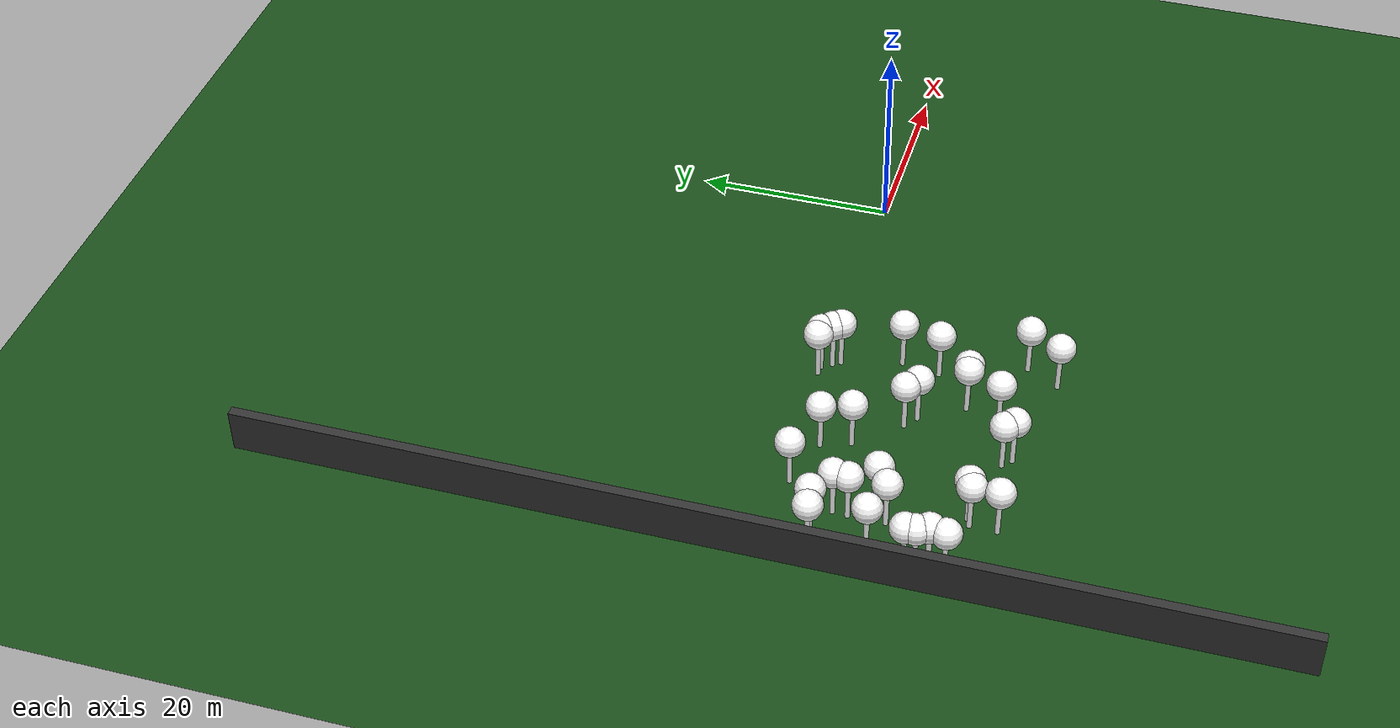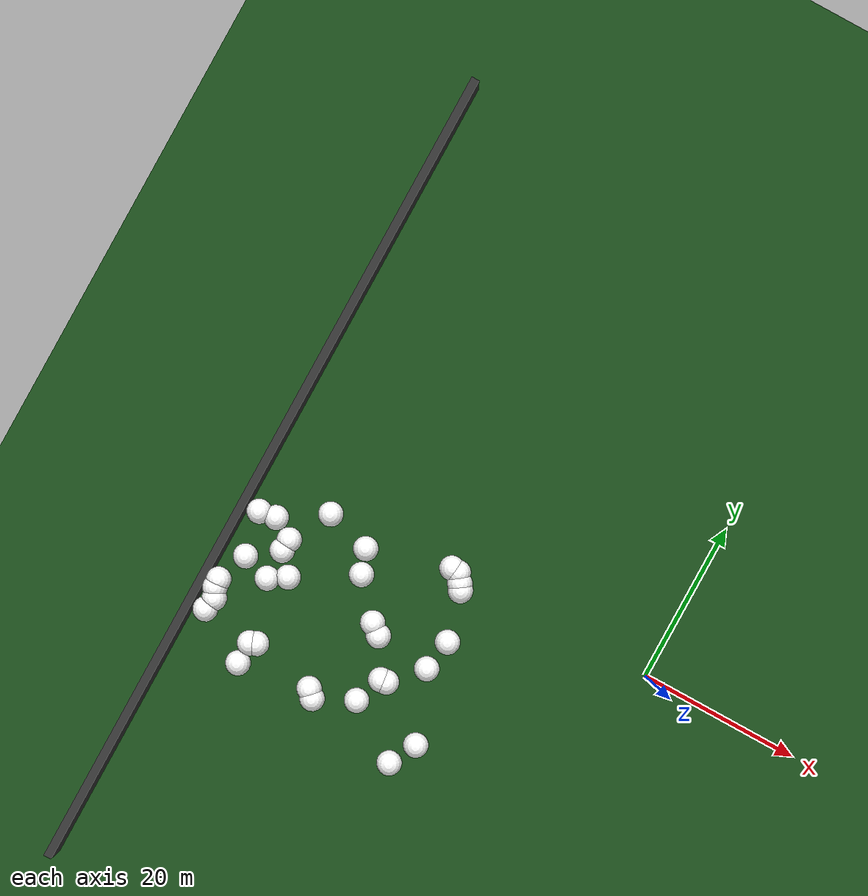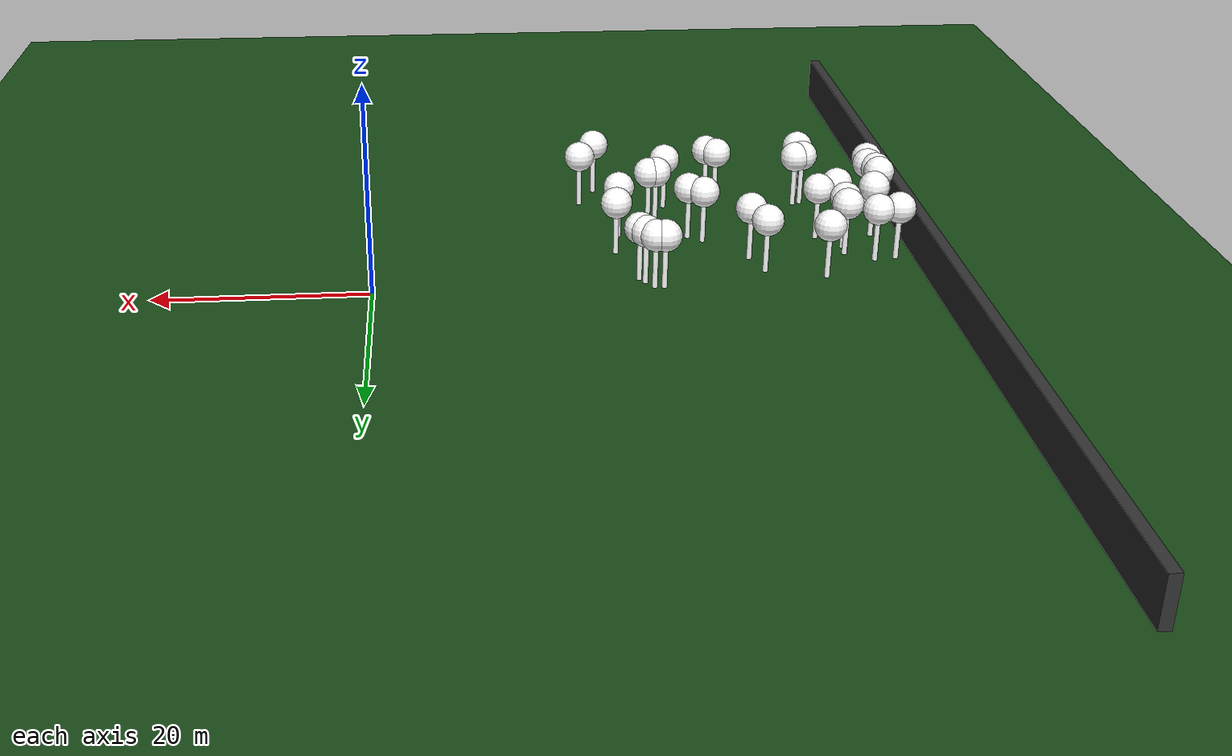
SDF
<sdf version="1.8">
 <world name="forest_world">
  <model name="tree_simple448">
   <static>1</static>
   <link name="link">
    <pose>0 0 0.1 0 -0 0</pose>
    <collision name="collision_trunk">
     <pose>0 0 2 0 -0 0</pose>
     <geometry><cylinder><radius>0.25</radius><length>4</length></cylinder></geometry>
    </collision>
    <collision name="collision_treetop">
     <pose>0 0 5.2 0 -0 0</pose>
     <geometry><sphere><radius>1.5</radius></sphere></geometry>
    </collision>
    <visual name="trunk">
     <pose>0 0 2 0 -0 0</pose>
     <geometry><cylinder><radius>0.25</radius><length>4</length></cylinder></geometry>
     <material>
      <ambient>0.5 0.5 0.5 1</ambient>
      <diffuse>1.0 1.0 1.0 1</diffuse>
      <specular>0.0 0.0 0.0 1</specular>
      <pbr>
       <metal>
        <albedo_map>../worlds/textures/tree_simple_trunk.jpg</albedo_map>
        <metalness>0.0</metalness>
        <roughness>0.8</roughness>
       </metal>
      </pbr>
     </material>
    </visual>
    <visual name="treetop">
     <pose>0 0 5.2 0 -0 0</pose>
     <geometry><sphere><radius>1.5</radius></sphere></geometry>
     <material>
      <ambient>0.5 0.5 0.5 1</ambient>
      <diffuse>1.0 1.0 1.0 1</diffuse>
      <specular>0.0 0.0 0.0 1</specular>
      <pbr>
       <metal>
        <albedo_map>../worlds/textures/tree_simple_treetop.jpg</albedo_map>
        <metalness>0.0</metalness>
        <roughness>0.9</roughness>
       </metal>
      </pbr>
     </material>
    </visual>
   </link>
   <pose>-24.5519753109 -1.42546954192 0 0 -0 0</pose>
  </model>
  <model name="tree_simple434">
   <static>1</static>
   <link name="link">
    <pose>0 0 0.1 0 -0 0</pose>
    <collision name="collision_trunk">
     <pose>0 0 2 0 -0 0</pose>
     <geometry><cylinder><radius>0.25</radius><length>4</length></cylinder></geometry>
    </collision>
    <collision name="collision_treetop">
     <pose>0 0 5.2 0 -0 0</pose>
     <geometry><sphere><radius>1.5</radius></sphere></geometry>
    </collision>
    <visual name="trunk">
     <pose>0 0 2 0 -0 0</pose>
     <geometry><cylinder><radius>0.25</radius><length>4</length></cylinder></geometry>
     <material>
      <ambient>0.5 0.5 0.5 1</ambient>
      <diffuse>1.0 1.0 1.0 1</diffuse>
      <specular>0.0 0.0 0.0 1</specular>
      <pbr>
       <metal>
        <albedo_map>../worlds/textures/tree_simple_trunk.jpg</albedo_map>
        <metalness>0.0</metalness>
        <roughness>0.8</roughness>
       </metal>
      </pbr>
     </material>
    </visual>
    <visual name="treetop">
     <pose>0 0 5.2 0 -0 0</pose>
     <geometry><sphere><radius>1.5</radius></sphere></geometry>
     <material>
      <ambient>0.5 0.5 0.5 1</ambient>
      <diffuse>1.0 1.0 1.0 1</diffuse>
      <specular>0.0 0.0 0.0 1</specular>
      <pbr>
       <metal>
        <albedo_map>../worlds/textures/tree_simple_treetop.jpg</albedo_map>
        <metalness>0.0</metalness>
        <roughness>0.9</roughness>
       </metal>
      </pbr>
     </material>
    </visual>
   </link>
   <pose>-43.1297442783 -18.5304452852 0 0 -0 0</pose>
  </model>
  <model name="tree_simple418">
   <static>1</static>
   <link name="link">
    <pose>0 0 0.1 0 -0 0</pose>
    <collision name="collision_trunk">
     <pose>0 0 2 0 -0 0</pose>
     <geometry><cylinder><radius>0.25</radius><length>4</length></cylinder></geometry>
    </collision>
    <collision name="collision_treetop">
     <pose>0 0 5.2 0 -0 0</pose>
     <geometry><sphere><radius>1.5</radius></sphere></geometry>
    </collision>
    <visual name="trunk">
     <pose>0 0 2 0 -0 0</pose>
     <geometry><cylinder><radius>0.25</radius><length>4</length></cylinder></geometry>
     <material>
      <ambient>0.5 0.5 0.5 1</ambient>
      <diffuse>1.0 1.0 1.0 1</diffuse>
      <specular>0.0 0.0 0.0 1</specular>
      <pbr>
       <metal>
        <albedo_map>../worlds/textures/tree_simple_trunk.jpg</albedo_map>
        <metalness>0.0</metalness>
        <roughness>0.8</roughness>
       </metal>
      </pbr>
     </material>
    </visual>
    <visual name="treetop">
     <pose>0 0 5.2 0 -0 0</pose>
     <geometry><sphere><radius>1.5</radius></sphere></geometry>
     <material>
      <ambient>0.5 0.5 0.5 1</ambient>
      <diffuse>1.0 1.0 1.0 1</diffuse>
      <specular>0.0 0.0 0.0 1</specular>
      <pbr>
       <metal>
        <albedo_map>../worlds/textures/tree_simple_treetop.jpg</albedo_map>
        <metalness>0.0</metalness>
        <roughness>0.9</roughness>
       </metal>
      </pbr>
     </material>
    </visual>
   </link>
   <pose>-22.9841604277 -7.39292719752 0 0 -0 0</pose>
  </model>
  <model name="tree_simple403">
   <static>1</static>
   <link name="link">
    <pose>0 0 0.1 0 -0 0</pose>
    <collision name="collision_trunk">
     <pose>0 0 2 0 -0 0</pose>
     <geometry><cylinder><radius>0.25</radius><length>4</length></cylinder></geometry>
    </collision>
    <collision name="collision_treetop">
     <pose>0 0 5.2 0 -0 0</pose>
     <geometry><sphere><radius>1.5</radius></sphere></geometry>
    </collision>
    <visual name="trunk">
     <pose>0 0 2 0 -0 0</pose>
     <geometry><cylinder><radius>0.25</radius><length>4</length></cylinder></geometry>
     <material>
      <ambient>0.5 0.5 0.5 1</ambient>
      <diffuse>1.0 1.0 1.0 1</diffuse>
      <specular>0.0 0.0 0.0 1</specular>
      <pbr>
       <metal>
        <albedo_map>../worlds/textures/tree_simple_trunk.jpg</albedo_map>
        <metalness>0.0</metalness>
        <roughness>0.8</roughness>
       </metal>
      </pbr>
     </material>
    </visual>
    <visual name="treetop">
     <pose>0 0 5.2 0 -0 0</pose>
     <geometry><sphere><radius>1.5</radius></sphere></geometry>
     <material>
      <ambient>0.5 0.5 0.5 1</ambient>
      <diffuse>1.0 1.0 1.0 1</diffuse>
      <specular>0.0 0.0 0.0 1</specular>
      <pbr>
       <metal>
        <albedo_map>../worlds/textures/tree_simple_treetop.jpg</albedo_map>
        <metalness>0.0</metalness>
        <roughness>0.9</roughness>
       </metal>
      </pbr>
     </material>
    </visual>
   </link>
   <pose>-49.5316989744 -17.555694289 0 0 -0 0</pose>
  </model>
  <model name="tree_simple396">
   <static>1</static>
   <link name="link">
    <pose>0 0 0.1 0 -0 0</pose>
    <collision name="collision_trunk">
     <pose>0 0 2 0 -0 0</pose>
     <geometry><cylinder><radius>0.25</radius><length>4</length></cylinder></geometry>
    </collision>
    <collision name="collision_treetop">
     <pose>0 0 5.2 0 -0 0</pose>
     <geometry><sphere><radius>1.5</radius></sphere></geometry>
    </collision>
    <visual name="trunk">
     <pose>0 0 2 0 -0 0</pose>
     <geometry><cylinder><radius>0.25</radius><length>4</length></cylinder></geometry>
     <material>
      <ambient>0.5 0.5 0.5 1</ambient>
      <diffuse>1.0 1.0 1.0 1</diffuse>
      <specular>0.0 0.0 0.0 1</specular>
      <pbr>
       <metal>
        <albedo_map>../worlds/textures/tree_simple_trunk.jpg</albedo_map>
        <metalness>0.0</metalness>
        <roughness>0.8</roughness>
       </metal>
      </pbr>
     </material>
    </visual>
    <visual name="treetop">
     <pose>0 0 5.2 0 -0 0</pose>
     <geometry><sphere><radius>1.5</radius></sphere></geometry>
     <material>
      <ambient>0.5 0.5 0.5 1</ambient>
      <diffuse>1.0 1.0 1.0 1</diffuse>
      <specular>0.0 0.0 0.0 1</specular>
      <pbr>
       <metal>
        <albedo_map>../worlds/textures/tree_simple_treetop.jpg</albedo_map>
        <metalness>0.0</metalness>
        <roughness>0.9</roughness>
       </metal>
      </pbr>
     </material>
    </visual>
   </link>
   <pose>-34.4954871255 -19.8377607827 0 0 -0 0</pose>
  </model>
  <model name="tree_simple375">
   <static>1</static>
   <link name="link">
    <pose>0 0 0.1 0 -0 0</pose>
    <collision name="collision_trunk">
     <pose>0 0 2 0 -0 0</pose>
     <geometry><cylinder><radius>0.25</radius><length>4</length></cylinder></geometry>
    </collision>
    <collision name="collision_treetop">
     <pose>0 0 5.2 0 -0 0</pose>
     <geometry><sphere><radius>1.5</radius></sphere></geometry>
    </collision>
    <visual name="trunk">
     <pose>0 0 2 0 -0 0</pose>
     <geometry><cylinder><radius>0.25</radius><length>4</length></cylinder></geometry>
     <material>
      <ambient>0.5 0.5 0.5 1</ambient>
      <diffuse>1.0 1.0 1.0 1</diffuse>
      <specular>0.0 0.0 0.0 1</specular>
      <pbr>
       <metal>
        <albedo_map>../worlds/textures/tree_simple_trunk.jpg</albedo_map>
        <metalness>0.0</metalness>
        <roughness>0.8</roughness>
       </metal>
      </pbr>
     </material>
    </visual>
    <visual name="treetop">
     <pose>0 0 5.2 0 -0 0</pose>
     <geometry><sphere><radius>1.5</radius></sphere></geometry>
     <material>
      <ambient>0.5 0.5 0.5 1</ambient>
      <diffuse>1.0 1.0 1.0 1</diffuse>
      <specular>0.0 0.0 0.0 1</specular>
      <pbr>
       <metal>
        <albedo_map>../worlds/textures/tree_simple_treetop.jpg</albedo_map>
        <metalness>0.0</metalness>
        <roughness>0.9</roughness>
       </metal>
      </pbr>
     </material>
    </visual>
   </link>
   <pose>-48.3845088934 -9.9079742 0 0 -0 0</pose>
  </model>
  <model name="tree_simple373">
   <static>1</static>
   <link name="link">
    <pose>0 0 0.1 0 -0 0</pose>
    <collision name="collision_trunk">
     <pose>0 0 2 0 -0 0</pose>
     <geometry><cylinder><radius>0.25</radius><length>4</length></cylinder></geometry>
    </collision>
    <collision name="collision_treetop">
     <pose>0 0 5.2 0 -0 0</pose>
     <geometry><sphere><radius>1.5</radius></sphere></geometry>
    </collision>
    <visual name="trunk">
     <pose>0 0 2 0 -0 0</pose>
     <geometry><cylinder><radius>0.25</radius><length>4</length></cylinder></geometry>
     <material>
      <ambient>0.5 0.5 0.5 1</ambient>
      <diffuse>1.0 1.0 1.0 1</diffuse>
      <specular>0.0 0.0 0.0 1</specular>
      <pbr>
       <metal>
        <albedo_map>../worlds/textures/tree_simple_trunk.jpg</albedo_map>
        <metalness>0.0</metalness>
        <roughness>0.8</roughness>
       </metal>
      </pbr>
     </material>
    </visual>
    <visual name="treetop">
     <pose>0 0 5.2 0 -0 0</pose>
     <geometry><sphere><radius>1.5</radius></sphere></geometry>
     <material>
      <ambient>0.5 0.5 0.5 1</ambient>
      <diffuse>1.0 1.0 1.0 1</diffuse>
      <specular>0.0 0.0 0.0 1</specular>
      <pbr>
       <metal>
        <albedo_map>../worlds/textures/tree_simple_treetop.jpg</albedo_map>
        <metalness>0.0</metalness>
        <roughness>0.9</roughness>
       </metal>
      </pbr>
     </material>
    </visual>
   </link>
   <pose>-43.1842610619 -21.2191114712 0 0 -0 0</pose>
  </model>
  <model name="tree_simple349">
   <static>1</static>
   <link name="link">
    <pose>0 0 0.1 0 -0 0</pose>
    <collision name="collision_trunk">
     <pose>0 0 2 0 -0 0</pose>
     <geometry><cylinder><radius>0.25</radius><length>4</length></cylinder></geometry>
    </collision>
    <collision name="collision_treetop">
     <pose>0 0 5.2 0 -0 0</pose>
     <geometry><sphere><radius>1.5</radius></sphere></geometry>
    </collision>
    <visual name="trunk">
     <pose>0 0 2 0 -0 0</pose>
     <geometry><cylinder><radius>0.25</radius><length>4</length></cylinder></geometry>
     <material>
      <ambient>0.5 0.5 0.5 1</ambient>
      <diffuse>1.0 1.0 1.0 1</diffuse>
      <specular>0.0 0.0 0.0 1</specular>
      <pbr>
       <metal>
        <albedo_map>../worlds/textures/tree_simple_trunk.jpg</albedo_map>
        <metalness>0.0</metalness>
        <roughness>0.8</roughness>
       </metal>
      </pbr>
     </material>
    </visual>
    <visual name="treetop">
     <pose>0 0 5.2 0 -0 0</pose>
     <geometry><sphere><radius>1.5</radius></sphere></geometry>
     <material>
      <ambient>0.5 0.5 0.5 1</ambient>
      <diffuse>1.0 1.0 1.0 1</diffuse>
      <specular>0.0 0.0 0.0 1</specular>
      <pbr>
       <metal>
        <albedo_map>../worlds/textures/tree_simple_treetop.jpg</albedo_map>
        <metalness>0.0</metalness>
        <roughness>0.9</roughness>
       </metal>
      </pbr>
     </material>
    </visual>
   </link>
   <pose>-20.4686708935 -19.6389151122 0 0 -0 0</pose>
  </model>
  <model name="tree_simple341">
   <static>1</static>
   <link name="link">
    <pose>0 0 0.1 0 -0 0</pose>
    <collision name="collision_trunk">
     <pose>0 0 2 0 -0 0</pose>
     <geometry><cylinder><radius>0.25</radius><length>4</length></cylinder></geometry>
    </collision>
    <collision name="collision_treetop">
     <pose>0 0 5.2 0 -0 0</pose>
     <geometry><sphere><radius>1.5</radius></sphere></geometry>
    </collision>
    <visual name="trunk">
     <pose>0 0 2 0 -0 0</pose>
     <geometry><cylinder><radius>0.25</radius><length>4</length></cylinder></geometry>
     <material>
      <ambient>0.5 0.5 0.5 1</ambient>
      <diffuse>1.0 1.0 1.0 1</diffuse>
      <specular>0.0 0.0 0.0 1</specular>
      <pbr>
       <metal>
        <albedo_map>../worlds/textures/tree_simple_trunk.jpg</albedo_map>
        <metalness>0.0</metalness>
        <roughness>0.8</roughness>
       </metal>
      </pbr>
     </material>
    </visual>
    <visual name="treetop">
     <pose>0 0 5.2 0 -0 0</pose>
     <geometry><sphere><radius>1.5</radius></sphere></geometry>
     <material>
      <ambient>0.5 0.5 0.5 1</ambient>
      <diffuse>1.0 1.0 1.0 1</diffuse>
      <specular>0.0 0.0 0.0 1</specular>
      <pbr>
       <metal>
        <albedo_map>../worlds/textures/tree_simple_treetop.jpg</albedo_map>
        <metalness>0.0</metalness>
        <roughness>0.9</roughness>
       </metal>
      </pbr>
     </material>
    </visual>
   </link>
   <pose>-49.5073976614 -4.58498276765 0 0 -0 0</pose>
  </model>
  <model name="tree_simple326">
   <static>1</static>
   <link name="link">
    <pose>0 0 0.1 0 -0 0</pose>
    <collision name="collision_trunk">
     <pose>0 0 2 0 -0 0</pose>
     <geometry><cylinder><radius>0.25</radius><length>4</length></cylinder></geometry>
    </collision>
    <collision name="collision_treetop">
     <pose>0 0 5.2 0 -0 0</pose>
     <geometry><sphere><radius>1.5</radius></sphere></geometry>
    </collision>
    <visual name="trunk">
     <pose>0 0 2 0 -0 0</pose>
     <geometry><cylinder><radius>0.25</radius><length>4</length></cylinder></geometry>
     <material>
      <ambient>0.5 0.5 0.5 1</ambient>
      <diffuse>1.0 1.0 1.0 1</diffuse>
      <specular>0.0 0.0 0.0 1</specular>
      <pbr>
       <metal>
        <albedo_map>../worlds/textures/tree_simple_trunk.jpg</albedo_map>
        <metalness>0.0</metalness>
        <roughness>0.8</roughness>
       </metal>
      </pbr>
     </material>
    </visual>
    <visual name="treetop">
     <pose>0 0 5.2 0 -0 0</pose>
     <geometry><sphere><radius>1.5</radius></sphere></geometry>
     <material>
      <ambient>0.5 0.5 0.5 1</ambient>
      <diffuse>1.0 1.0 1.0 1</diffuse>
      <specular>0.0 0.0 0.0 1</specular>
      <pbr>
       <metal>
        <albedo_map>../worlds/textures/tree_simple_treetop.jpg</albedo_map>
        <metalness>0.0</metalness>
        <roughness>0.9</roughness>
       </metal>
      </pbr>
     </material>
    </visual>
   </link>
   <pose>-44.8519520945 -5.80439962373 0 0 -0 0</pose>
  </model>
  <model name="tree_simple323">
   <static>1</static>
   <link name="link">
    <pose>0 0 0.1 0 -0 0</pose>
    <collision name="collision_trunk">
     <pose>0 0 2 0 -0 0</pose>
     <geometry><cylinder><radius>0.25</radius><length>4</length></cylinder></geometry>
    </collision>
    <collision name="collision_treetop">
     <pose>0 0 5.2 0 -0 0</pose>
     <geometry><sphere><radius>1.5</radius></sphere></geometry>
    </collision>
    <visual name="trunk">
     <pose>0 0 2 0 -0 0</pose>
     <geometry><cylinder><radius>0.25</radius><length>4</length></cylinder></geometry>
     <material>
      <ambient>0.5 0.5 0.5 1</ambient>
      <diffuse>1.0 1.0 1.0 1</diffuse>
      <specular>0.0 0.0 0.0 1</specular>
      <pbr>
       <metal>
        <albedo_map>../worlds/textures/tree_simple_trunk.jpg</albedo_map>
        <metalness>0.0</metalness>
        <roughness>0.8</roughness>
       </metal>
      </pbr>
     </material>
    </visual>
    <visual name="treetop">
     <pose>0 0 5.2 0 -0 0</pose>
     <geometry><sphere><radius>1.5</radius></sphere></geometry>
     <material>
      <ambient>0.5 0.5 0.5 1</ambient>
      <diffuse>1.0 1.0 1.0 1</diffuse>
      <specular>0.0 0.0 0.0 1</specular>
      <pbr>
       <metal>
        <albedo_map>../worlds/textures/tree_simple_treetop.jpg</albedo_map>
        <metalness>0.0</metalness>
        <roughness>0.9</roughness>
       </metal>
      </pbr>
     </material>
    </visual>
   </link>
   <pose>-44.9542016132 -10.9647646888 0 0 -0 0</pose>
  </model>
  <model name="tree_simple318">
   <static>1</static>
   <link name="link">
    <pose>0 0 0.1 0 -0 0</pose>
    <collision name="collision_trunk">
     <pose>0 0 2 0 -0 0</pose>
     <geometry><cylinder><radius>0.25</radius><length>4</length></cylinder></geometry>
    </collision>
    <collision name="collision_treetop">
     <pose>0 0 5.2 0 -0 0</pose>
     <geometry><sphere><radius>1.5</radius></sphere></geometry>
    </collision>
    <visual name="trunk">
     <pose>0 0 2 0 -0 0</pose>
     <geometry><cylinder><radius>0.25</radius><length>4</length></cylinder></geometry>
     <material>
      <ambient>0.5 0.5 0.5 1</ambient>
      <diffuse>1.0 1.0 1.0 1</diffuse>
      <specular>0.0 0.0 0.0 1</specular>
      <pbr>
       <metal>
        <albedo_map>../worlds/textures/tree_simple_trunk.jpg</albedo_map>
        <metalness>0.0</metalness>
        <roughness>0.8</roughness>
       </metal>
      </pbr>
     </material>
    </visual>
    <visual name="treetop">
     <pose>0 0 5.2 0 -0 0</pose>
     <geometry><sphere><radius>1.5</radius></sphere></geometry>
     <material>
      <ambient>0.5 0.5 0.5 1</ambient>
      <diffuse>1.0 1.0 1.0 1</diffuse>
      <specular>0.0 0.0 0.0 1</specular>
      <pbr>
       <metal>
        <albedo_map>../worlds/textures/tree_simple_treetop.jpg</albedo_map>
        <metalness>0.0</metalness>
        <roughness>0.9</roughness>
       </metal>
      </pbr>
     </material>
    </visual>
   </link>
   <pose>-35.5307244579 -5.31130875944 0 0 -0 0</pose>
  </model>
  <model name="tree_simple279">
   <static>1</static>
   <link name="link">
    <pose>0 0 0.1 0 -0 0</pose>
    <collision name="collision_trunk">
     <pose>0 0 2 0 -0 0</pose>
     <geometry><cylinder><radius>0.25</radius><length>4</length></cylinder></geometry>
    </collision>
    <collision name="collision_treetop">
     <pose>0 0 5.2 0 -0 0</pose>
     <geometry><sphere><radius>1.5</radius></sphere></geometry>
    </collision>
    <visual name="trunk">
     <pose>0 0 2 0 -0 0</pose>
     <geometry><cylinder><radius>0.25</radius><length>4</length></cylinder></geometry>
     <material>
      <ambient>0.5 0.5 0.5 1</ambient>
      <diffuse>1.0 1.0 1.0 1</diffuse>
      <specular>0.0 0.0 0.0 1</specular>
      <pbr>
       <metal>
        <albedo_map>../worlds/textures/tree_simple_trunk.jpg</albedo_map>
        <metalness>0.0</metalness>
        <roughness>0.8</roughness>
       </metal>
      </pbr>
     </material>
    </visual>
    <visual name="treetop">
     <pose>0 0 5.2 0 -0 0</pose>
     <geometry><sphere><radius>1.5</radius></sphere></geometry>
     <material>
      <ambient>0.5 0.5 0.5 1</ambient>
      <diffuse>1.0 1.0 1.0 1</diffuse>
      <specular>0.0 0.0 0.0 1</specular>
      <pbr>
       <metal>
        <albedo_map>../worlds/textures/tree_simple_treetop.jpg</albedo_map>
        <metalness>0.0</metalness>
        <roughness>0.9</roughness>
       </metal>
      </pbr>
     </material>
    </visual>
   </link>
   <pose>-25.0449823603 -0.682470499347 0 0 -0 0</pose>
  </model>
  <model name="tree_simple272">
   <static>1</static>
   <link name="link">
    <pose>0 0 0.1 0 -0 0</pose>
    <collision name="collision_trunk">
     <pose>0 0 2 0 -0 0</pose>
     <geometry><cylinder><radius>0.25</radius><length>4</length></cylinder></geometry>
    </collision>
    <collision name="collision_treetop">
     <pose>0 0 5.2 0 -0 0</pose>
     <geometry><sphere><radius>1.5</radius></sphere></geometry>
    </collision>
    <visual name="trunk">
     <pose>0 0 2 0 -0 0</pose>
     <geometry><cylinder><radius>0.25</radius><length>4</length></cylinder></geometry>
     <material>
      <ambient>0.5 0.5 0.5 1</ambient>
      <diffuse>1.0 1.0 1.0 1</diffuse>
      <specular>0.0 0.0 0.0 1</specular>
      <pbr>
       <metal>
        <albedo_map>../worlds/textures/tree_simple_trunk.jpg</albedo_map>
        <metalness>0.0</metalness>
        <roughness>0.8</roughness>
       </metal>
      </pbr>
     </material>
    </visual>
    <visual name="treetop">
     <pose>0 0 5.2 0 -0 0</pose>
     <geometry><sphere><radius>1.5</radius></sphere></geometry>
     <material>
      <ambient>0.5 0.5 0.5 1</ambient>
      <diffuse>1.0 1.0 1.0 1</diffuse>
      <specular>0.0 0.0 0.0 1</specular>
      <pbr>
       <metal>
        <albedo_map>../worlds/textures/tree_simple_treetop.jpg</albedo_map>
        <metalness>0.0</metalness>
        <roughness>0.9</roughness>
       </metal>
      </pbr>
     </material>
    </visual>
   </link>
   <pose>-28.9961141051 -18.3973115949 0 0 -0 0</pose>
  </model>
  <model name="tree_simple259">
   <static>1</static>
   <link name="link">
    <pose>0 0 0.1 0 -0 0</pose>
    <collision name="collision_trunk">
     <pose>0 0 2 0 -0 0</pose>
     <geometry><cylinder><radius>0.25</radius><length>4</length></cylinder></geometry>
    </collision>
    <collision name="collision_treetop">
     <pose>0 0 5.2 0 -0 0</pose>
     <geometry><sphere><radius>1.5</radius></sphere></geometry>
    </collision>
    <visual name="trunk">
     <pose>0 0 2 0 -0 0</pose>
     <geometry><cylinder><radius>0.25</radius><length>4</length></cylinder></geometry>
     <material>
      <ambient>0.5 0.5 0.5 1</ambient>
      <diffuse>1.0 1.0 1.0 1</diffuse>
      <specular>0.0 0.0 0.0 1</specular>
      <pbr>
       <metal>
        <albedo_map>../worlds/textures/tree_simple_trunk.jpg</albedo_map>
        <metalness>0.0</metalness>
        <roughness>0.8</roughness>
       </metal>
      </pbr>
     </material>
    </visual>
    <visual name="treetop">
     <pose>0 0 5.2 0 -0 0</pose>
     <geometry><sphere><radius>1.5</radius></sphere></geometry>
     <material>
      <ambient>0.5 0.5 0.5 1</ambient>
      <diffuse>1.0 1.0 1.0 1</diffuse>
      <specular>0.0 0.0 0.0 1</specular>
      <pbr>
       <metal>
        <albedo_map>../worlds/textures/tree_simple_treetop.jpg</albedo_map>
        <metalness>0.0</metalness>
        <roughness>0.9</roughness>
       </metal>
      </pbr>
     </material>
    </visual>
   </link>
   <pose>-49.2281564384 -15.9494105315 0 0 -0 0</pose>
  </model>
  <model name="tree_simple245">
   <static>1</static>
   <link name="link">
    <pose>0 0 0.1 0 -0 0</pose>
    <collision name="collision_trunk">
     <pose>0 0 2 0 -0 0</pose>
     <geometry><cylinder><radius>0.25</radius><length>4</length></cylinder></geometry>
    </collision>
    <collision name="collision_treetop">
     <pose>0 0 5.2 0 -0 0</pose>
     <geometry><sphere><radius>1.5</radius></sphere></geometry>
    </collision>
    <visual name="trunk">
     <pose>0 0 2 0 -0 0</pose>
     <geometry><cylinder><radius>0.25</radius><length>4</length></cylinder></geometry>
     <material>
      <ambient>0.5 0.5 0.5 1</ambient>
      <diffuse>1.0 1.0 1.0 1</diffuse>
      <specular>0.0 0.0 0.0 1</specular>
      <pbr>
       <metal>
        <albedo_map>../worlds/textures/tree_simple_trunk.jpg</albedo_map>
        <metalness>0.0</metalness>
        <roughness>0.8</roughness>
       </metal>
      </pbr>
     </material>
    </visual>
    <visual name="treetop">
     <pose>0 0 5.2 0 -0 0</pose>
     <geometry><sphere><radius>1.5</radius></sphere></geometry>
     <material>
      <ambient>0.5 0.5 0.5 1</ambient>
      <diffuse>1.0 1.0 1.0 1</diffuse>
      <specular>0.0 0.0 0.0 1</specular>
      <pbr>
       <metal>
        <albedo_map>../worlds/textures/tree_simple_treetop.jpg</albedo_map>
        <metalness>0.0</metalness>
        <roughness>0.9</roughness>
       </metal>
      </pbr>
     </material>
    </visual>
   </link>
   <pose>-25.7973722527 0.315231770046 0 0 -0 0</pose>
  </model>
  <model name="tree_simple240">
   <static>1</static>
   <link name="link">
    <pose>0 0 0.1 0 -0 0</pose>
    <collision name="collision_trunk">
     <pose>0 0 2 0 -0 0</pose>
     <geometry><cylinder><radius>0.25</radius><length>4</length></cylinder></geometry>
    </collision>
    <collision name="collision_treetop">
     <pose>0 0 5.2 0 -0 0</pose>
     <geometry><sphere><radius>1.5</radius></sphere></geometry>
    </collision>
    <visual name="trunk">
     <pose>0 0 2 0 -0 0</pose>
     <geometry><cylinder><radius>0.25</radius><length>4</length></cylinder></geometry>
     <material>
      <ambient>0.5 0.5 0.5 1</ambient>
      <diffuse>1.0 1.0 1.0 1</diffuse>
      <specular>0.0 0.0 0.0 1</specular>
      <pbr>
       <metal>
        <albedo_map>../worlds/textures/tree_simple_trunk.jpg</albedo_map>
        <metalness>0.0</metalness>
        <roughness>0.8</roughness>
       </metal>
      </pbr>
     </material>
    </visual>
    <visual name="treetop">
     <pose>0 0 5.2 0 -0 0</pose>
     <geometry><sphere><radius>1.5</radius></sphere></geometry>
     <material>
      <ambient>0.5 0.5 0.5 1</ambient>
      <diffuse>1.0 1.0 1.0 1</diffuse>
      <specular>0.0 0.0 0.0 1</specular>
      <pbr>
       <metal>
        <albedo_map>../worlds/textures/tree_simple_treetop.jpg</albedo_map>
        <metalness>0.0</metalness>
        <roughness>0.9</roughness>
       </metal>
      </pbr>
     </material>
    </visual>
   </link>
   <pose>-49.7673729573 -14.7908164176 0 0 -0 0</pose>
  </model>
  <model name="tree_simple239">
   <static>1</static>
   <link name="link">
    <pose>0 0 0.1 0 -0 0</pose>
    <collision name="collision_trunk">
     <pose>0 0 2 0 -0 0</pose>
     <geometry><cylinder><radius>0.25</radius><length>4</length></cylinder></geometry>
    </collision>
    <collision name="collision_treetop">
     <pose>0 0 5.2 0 -0 0</pose>
     <geometry><sphere><radius>1.5</radius></sphere></geometry>
    </collision>
    <visual name="trunk">
     <pose>0 0 2 0 -0 0</pose>
     <geometry><cylinder><radius>0.25</radius><length>4</length></cylinder></geometry>
     <material>
      <ambient>0.5 0.5 0.5 1</ambient>
      <diffuse>1.0 1.0 1.0 1</diffuse>
      <specular>0.0 0.0 0.0 1</specular>
      <pbr>
       <metal>
        <albedo_map>../worlds/textures/tree_simple_trunk.jpg</albedo_map>
        <metalness>0.0</metalness>
        <roughness>0.8</roughness>
       </metal>
      </pbr>
     </material>
    </visual>
    <visual name="treetop">
     <pose>0 0 5.2 0 -0 0</pose>
     <geometry><sphere><radius>1.5</radius></sphere></geometry>
     <material>
      <ambient>0.5 0.5 0.5 1</ambient>
      <diffuse>1.0 1.0 1.0 1</diffuse>
      <specular>0.0 0.0 0.0 1</specular>
      <pbr>
       <metal>
        <albedo_map>../worlds/textures/tree_simple_treetop.jpg</albedo_map>
        <metalness>0.0</metalness>
        <roughness>0.9</roughness>
       </metal>
      </pbr>
     </material>
    </visual>
   </link>
   <pose>-44.9803872855 -7.28495240751 0 0 -0 0</pose>
  </model>
  <model name="tree_simple221">
   <static>1</static>
   <link name="link">
    <pose>0 0 0.1 0 -0 0</pose>
    <collision name="collision_trunk">
     <pose>0 0 2 0 -0 0</pose>
     <geometry><cylinder><radius>0.25</radius><length>4</length></cylinder></geometry>
    </collision>
    <collision name="collision_treetop">
     <pose>0 0 5.2 0 -0 0</pose>
     <geometry><sphere><radius>1.5</radius></sphere></geometry>
    </collision>
    <visual name="trunk">
     <pose>0 0 2 0 -0 0</pose>
     <geometry><cylinder><radius>0.25</radius><length>4</length></cylinder></geometry>
     <material>
      <ambient>0.5 0.5 0.5 1</ambient>
      <diffuse>1.0 1.0 1.0 1</diffuse>
      <specular>0.0 0.0 0.0 1</specular>
      <pbr>
       <metal>
        <albedo_map>../worlds/textures/tree_simple_trunk.jpg</albedo_map>
        <metalness>0.0</metalness>
        <roughness>0.8</roughness>
       </metal>
      </pbr>
     </material>
    </visual>
    <visual name="treetop">
     <pose>0 0 5.2 0 -0 0</pose>
     <geometry><sphere><radius>1.5</radius></sphere></geometry>
     <material>
      <ambient>0.5 0.5 0.5 1</ambient>
      <diffuse>1.0 1.0 1.0 1</diffuse>
      <specular>0.0 0.0 0.0 1</specular>
      <pbr>
       <metal>
        <albedo_map>../worlds/textures/tree_simple_treetop.jpg</albedo_map>
        <metalness>0.0</metalness>
        <roughness>0.9</roughness>
       </metal>
      </pbr>
     </material>
    </visual>
   </link>
   <pose>-33.630014063 -20.7003393039 0 0 -0 0</pose>
  </model>
  <model name="tree_simple220">
   <static>1</static>
   <link name="link">
    <pose>0 0 0.1 0 -0 0</pose>
    <collision name="collision_trunk">
     <pose>0 0 2 0 -0 0</pose>
     <geometry><cylinder><radius>0.25</radius><length>4</length></cylinder></geometry>
    </collision>
    <collision name="collision_treetop">
     <pose>0 0 5.2 0 -0 0</pose>
     <geometry><sphere><radius>1.5</radius></sphere></geometry>
    </collision>
    <visual name="trunk">
     <pose>0 0 2 0 -0 0</pose>
     <geometry><cylinder><radius>0.25</radius><length>4</length></cylinder></geometry>
     <material>
      <ambient>0.5 0.5 0.5 1</ambient>
      <diffuse>1.0 1.0 1.0 1</diffuse>
      <specular>0.0 0.0 0.0 1</specular>
      <pbr>
       <metal>
        <albedo_map>../worlds/textures/tree_simple_trunk.jpg</albedo_map>
        <metalness>0.0</metalness>
        <roughness>0.8</roughness>
       </metal>
      </pbr>
     </material>
    </visual>
    <visual name="treetop">
     <pose>0 0 5.2 0 -0 0</pose>
     <geometry><sphere><radius>1.5</radius></sphere></geometry>
     <material>
      <ambient>0.5 0.5 0.5 1</ambient>
      <diffuse>1.0 1.0 1.0 1</diffuse>
      <specular>0.0 0.0 0.0 1</specular>
      <pbr>
       <metal>
        <albedo_map>../worlds/textures/tree_simple_treetop.jpg</albedo_map>
        <metalness>0.0</metalness>
        <roughness>0.9</roughness>
       </metal>
      </pbr>
     </material>
    </visual>
   </link>
   <pose>-36.5535815793 -2.43279627312 0 0 -0 0</pose>
  </model>
  <model name="tree_simple200">
   <static>1</static>
   <link name="link">
    <pose>0 0 0.1 0 -0 0</pose>
    <collision name="collision_trunk">
     <pose>0 0 2 0 -0 0</pose>
     <geometry><cylinder><radius>0.25</radius><length>4</length></cylinder></geometry>
    </collision>
    <collision name="collision_treetop">
     <pose>0 0 5.2 0 -0 0</pose>
     <geometry><sphere><radius>1.5</radius></sphere></geometry>
    </collision>
    <visual name="trunk">
     <pose>0 0 2 0 -0 0</pose>
     <geometry><cylinder><radius>0.25</radius><length>4</length></cylinder></geometry>
     <material>
      <ambient>0.5 0.5 0.5 1</ambient>
      <diffuse>1.0 1.0 1.0 1</diffuse>
      <specular>0.0 0.0 0.0 1</specular>
      <pbr>
       <metal>
        <albedo_map>../worlds/textures/tree_simple_trunk.jpg</albedo_map>
        <metalness>0.0</metalness>
        <roughness>0.8</roughness>
       </metal>
      </pbr>
     </material>
    </visual>
    <visual name="treetop">
     <pose>0 0 5.2 0 -0 0</pose>
     <geometry><sphere><radius>1.5</radius></sphere></geometry>
     <material>
      <ambient>0.5 0.5 0.5 1</ambient>
      <diffuse>1.0 1.0 1.0 1</diffuse>
      <specular>0.0 0.0 0.0 1</specular>
      <pbr>
       <metal>
        <albedo_map>../worlds/textures/tree_simple_treetop.jpg</albedo_map>
        <metalness>0.0</metalness>
        <roughness>0.9</roughness>
       </metal>
      </pbr>
     </material>
    </visual>
   </link>
   <pose>-22.1853775811 -22.9371972628 0 0 -0 0</pose>
  </model>
  <model name="tree_simple194">
   <static>1</static>
   <link name="link">
    <pose>0 0 0.1 0 -0 0</pose>
    <collision name="collision_trunk">
     <pose>0 0 2 0 -0 0</pose>
     <geometry><cylinder><radius>0.25</radius><length>4</length></cylinder></geometry>
    </collision>
    <collision name="collision_treetop">
     <pose>0 0 5.2 0 -0 0</pose>
     <geometry><sphere><radius>1.5</radius></sphere></geometry>
    </collision>
    <visual name="trunk">
     <pose>0 0 2 0 -0 0</pose>
     <geometry><cylinder><radius>0.25</radius><length>4</length></cylinder></geometry>
     <material>
      <ambient>0.5 0.5 0.5 1</ambient>
      <diffuse>1.0 1.0 1.0 1</diffuse>
      <specular>0.0 0.0 0.0 1</specular>
      <pbr>
       <metal>
        <albedo_map>../worlds/textures/tree_simple_trunk.jpg</albedo_map>
        <metalness>0.0</metalness>
        <roughness>0.8</roughness>
       </metal>
      </pbr>
     </material>
    </visual>
    <visual name="treetop">
     <pose>0 0 5.2 0 -0 0</pose>
     <geometry><sphere><radius>1.5</radius></sphere></geometry>
     <material>
      <ambient>0.5 0.5 0.5 1</ambient>
      <diffuse>1.0 1.0 1.0 1</diffuse>
      <specular>0.0 0.0 0.0 1</specular>
      <pbr>
       <metal>
        <albedo_map>../worlds/textures/tree_simple_treetop.jpg</albedo_map>
        <metalness>0.0</metalness>
        <roughness>0.9</roughness>
       </metal>
      </pbr>
     </material>
    </visual>
   </link>
   <pose>-23.6189562951 -11.2622665902 0 0 -0 0</pose>
  </model>
  <model name="tree_simple171">
   <static>1</static>
   <link name="link">
    <pose>0 0 0.1 0 -0 0</pose>
    <collision name="collision_trunk">
     <pose>0 0 2 0 -0 0</pose>
     <geometry><cylinder><radius>0.25</radius><length>4</length></cylinder></geometry>
    </collision>
    <collision name="collision_treetop">
     <pose>0 0 5.2 0 -0 0</pose>
     <geometry><sphere><radius>1.5</radius></sphere></geometry>
    </collision>
    <visual name="trunk">
     <pose>0 0 2 0 -0 0</pose>
     <geometry><cylinder><radius>0.25</radius><length>4</length></cylinder></geometry>
     <material>
      <ambient>0.5 0.5 0.5 1</ambient>
      <diffuse>1.0 1.0 1.0 1</diffuse>
      <specular>0.0 0.0 0.0 1</specular>
      <pbr>
       <metal>
        <albedo_map>../worlds/textures/tree_simple_trunk.jpg</albedo_map>
        <metalness>0.0</metalness>
        <roughness>0.8</roughness>
       </metal>
      </pbr>
     </material>
    </visual>
    <visual name="treetop">
     <pose>0 0 5.2 0 -0 0</pose>
     <geometry><sphere><radius>1.5</radius></sphere></geometry>
     <material>
      <ambient>0.5 0.5 0.5 1</ambient>
      <diffuse>1.0 1.0 1.0 1</diffuse>
      <specular>0.0 0.0 0.0 1</specular>
      <pbr>
       <metal>
        <albedo_map>../worlds/textures/tree_simple_treetop.jpg</albedo_map>
        <metalness>0.0</metalness>
        <roughness>0.9</roughness>
       </metal>
      </pbr>
     </material>
    </visual>
   </link>
   <pose>-47.4177148869 -4.27301626353 0 0 -0 0</pose>
  </model>
  <model name="tree_simple149">
   <static>1</static>
   <link name="link">
    <pose>0 0 0.1 0 -0 0</pose>
    <collision name="collision_trunk">
     <pose>0 0 2 0 -0 0</pose>
     <geometry><cylinder><radius>0.25</radius><length>4</length></cylinder></geometry>
    </collision>
    <collision name="collision_treetop">
     <pose>0 0 5.2 0 -0 0</pose>
     <geometry><sphere><radius>1.5</radius></sphere></geometry>
    </collision>
    <visual name="trunk">
     <pose>0 0 2 0 -0 0</pose>
     <geometry><cylinder><radius>0.25</radius><length>4</length></cylinder></geometry>
     <material>
      <ambient>0.5 0.5 0.5 1</ambient>
      <diffuse>1.0 1.0 1.0 1</diffuse>
      <specular>0.0 0.0 0.0 1</specular>
      <pbr>
       <metal>
        <albedo_map>../worlds/textures/tree_simple_trunk.jpg</albedo_map>
        <metalness>0.0</metalness>
        <roughness>0.8</roughness>
       </metal>
      </pbr>
     </material>
    </visual>
    <visual name="treetop">
     <pose>0 0 5.2 0 -0 0</pose>
     <geometry><sphere><radius>1.5</radius></sphere></geometry>
     <material>
      <ambient>0.5 0.5 0.5 1</ambient>
      <diffuse>1.0 1.0 1.0 1</diffuse>
      <specular>0.0 0.0 0.0 1</specular>
      <pbr>
       <metal>
        <albedo_map>../worlds/textures/tree_simple_treetop.jpg</albedo_map>
        <metalness>0.0</metalness>
        <roughness>0.9</roughness>
       </metal>
      </pbr>
     </material>
    </visual>
   </link>
   <pose>-30.3771264781 -10.615045033 0 0 -0 0</pose>
  </model>
  <model name="tree_simple146">
   <static>1</static>
   <link name="link">
    <pose>0 0 0.1 0 -0 0</pose>
    <collision name="collision_trunk">
     <pose>0 0 2 0 -0 0</pose>
     <geometry><cylinder><radius>0.25</radius><length>4</length></cylinder></geometry>
    </collision>
    <collision name="collision_treetop">
     <pose>0 0 5.2 0 -0 0</pose>
     <geometry><sphere><radius>1.5</radius></sphere></geometry>
    </collision>
    <visual name="trunk">
     <pose>0 0 2 0 -0 0</pose>
     <geometry><cylinder><radius>0.25</radius><length>4</length></cylinder></geometry>
     <material>
      <ambient>0.5 0.5 0.5 1</ambient>
      <diffuse>1.0 1.0 1.0 1</diffuse>
      <specular>0.0 0.0 0.0 1</specular>
      <pbr>
       <metal>
        <albedo_map>../worlds/textures/tree_simple_trunk.jpg</albedo_map>
        <metalness>0.0</metalness>
        <roughness>0.8</roughness>
       </metal>
      </pbr>
     </material>
    </visual>
    <visual name="treetop">
     <pose>0 0 5.2 0 -0 0</pose>
     <geometry><sphere><radius>1.5</radius></sphere></geometry>
     <material>
      <ambient>0.5 0.5 0.5 1</ambient>
      <diffuse>1.0 1.0 1.0 1</diffuse>
      <specular>0.0 0.0 0.0 1</specular>
      <pbr>
       <metal>
        <albedo_map>../worlds/textures/tree_simple_treetop.jpg</albedo_map>
        <metalness>0.0</metalness>
        <roughness>0.9</roughness>
       </metal>
      </pbr>
     </material>
    </visual>
   </link>
   <pose>-42.8686467761 -9.68210025238 0 0 -0 0</pose>
  </model>
  <model name="tree_simple121">
   <static>1</static>
   <link name="link">
    <pose>0 0 0.1 0 -0 0</pose>
    <collision name="collision_trunk">
     <pose>0 0 2 0 -0 0</pose>
     <geometry><cylinder><radius>0.25</radius><length>4</length></cylinder></geometry>
    </collision>
    <collision name="collision_treetop">
     <pose>0 0 5.2 0 -0 0</pose>
     <geometry><sphere><radius>1.5</radius></sphere></geometry>
    </collision>
    <visual name="trunk">
     <pose>0 0 2 0 -0 0</pose>
     <geometry><cylinder><radius>0.25</radius><length>4</length></cylinder></geometry>
     <material>
      <ambient>0.5 0.5 0.5 1</ambient>
      <diffuse>1.0 1.0 1.0 1</diffuse>
      <specular>0.0 0.0 0.0 1</specular>
      <pbr>
       <metal>
        <albedo_map>../worlds/textures/tree_simple_trunk.jpg</albedo_map>
        <metalness>0.0</metalness>
        <roughness>0.8</roughness>
       </metal>
      </pbr>
     </material>
    </visual>
    <visual name="treetop">
     <pose>0 0 5.2 0 -0 0</pose>
     <geometry><sphere><radius>1.5</radius></sphere></geometry>
     <material>
      <ambient>0.5 0.5 0.5 1</ambient>
      <diffuse>1.0 1.0 1.0 1</diffuse>
      <specular>0.0 0.0 0.0 1</specular>
      <pbr>
       <metal>
        <albedo_map>../worlds/textures/tree_simple_treetop.jpg</albedo_map>
        <metalness>0.0</metalness>
        <roughness>0.9</roughness>
       </metal>
      </pbr>
     </material>
    </visual>
   </link>
   <pose>-26.6760124136 0.407106369334 0 0 -0 0</pose>
  </model>
  <model name="tree_simple100">
   <static>1</static>
   <link name="link">
    <pose>0 0 0.1 0 -0 0</pose>
    <collision name="collision_trunk">
     <pose>0 0 2 0 -0 0</pose>
     <geometry><cylinder><radius>0.25</radius><length>4</length></cylinder></geometry>
    </collision>
    <collision name="collision_treetop">
     <pose>0 0 5.2 0 -0 0</pose>
     <geometry><sphere><radius>1.5</radius></sphere></geometry>
    </collision>
    <visual name="trunk">
     <pose>0 0 2 0 -0 0</pose>
     <geometry><cylinder><radius>0.25</radius><length>4</length></cylinder></geometry>
     <material>
      <ambient>0.5 0.5 0.5 1</ambient>
      <diffuse>1.0 1.0 1.0 1</diffuse>
      <specular>0.0 0.0 0.0 1</specular>
      <pbr>
       <metal>
        <albedo_map>../worlds/textures/tree_simple_trunk.jpg</albedo_map>
        <metalness>0.0</metalness>
        <roughness>0.8</roughness>
       </metal>
      </pbr>
     </material>
    </visual>
    <visual name="treetop">
     <pose>0 0 5.2 0 -0 0</pose>
     <geometry><sphere><radius>1.5</radius></sphere></geometry>
     <material>
      <ambient>0.5 0.5 0.5 1</ambient>
      <diffuse>1.0 1.0 1.0 1</diffuse>
      <specular>0.0 0.0 0.0 1</specular>
      <pbr>
       <metal>
        <albedo_map>../worlds/textures/tree_simple_treetop.jpg</albedo_map>
        <metalness>0.0</metalness>
        <roughness>0.9</roughness>
       </metal>
      </pbr>
     </material>
    </visual>
   </link>
   <pose>-42.0523955646 -0.870595497769 0 0 -0 0</pose>
  </model>
  <model name="tree_simple91">
   <static>1</static>
   <link name="link">
    <pose>0 0 0.1 0 -0 0</pose>
    <collision name="collision_trunk">
     <pose>0 0 2 0 -0 0</pose>
     <geometry><cylinder><radius>0.25</radius><length>4</length></cylinder></geometry>
    </collision>
    <collision name="collision_treetop">
     <pose>0 0 5.2 0 -0 0</pose>
     <geometry><sphere><radius>1.5</radius></sphere></geometry>
    </collision>
    <visual name="trunk">
     <pose>0 0 2 0 -0 0</pose>
     <geometry><cylinder><radius>0.25</radius><length>4</length></cylinder></geometry>
     <material>
      <ambient>0.5 0.5 0.5 1</ambient>
      <diffuse>1.0 1.0 1.0 1</diffuse>
      <specular>0.0 0.0 0.0 1</specular>
      <pbr>
       <metal>
        <albedo_map>../worlds/textures/tree_simple_trunk.jpg</albedo_map>
        <metalness>0.0</metalness>
        <roughness>0.8</roughness>
       </metal>
      </pbr>
     </material>
    </visual>
    <visual name="treetop">
     <pose>0 0 5.2 0 -0 0</pose>
     <geometry><sphere><radius>1.5</radius></sphere></geometry>
     <material>
      <ambient>0.5 0.5 0.5 1</ambient>
      <diffuse>1.0 1.0 1.0 1</diffuse>
      <specular>0.0 0.0 0.0 1</specular>
      <pbr>
       <metal>
        <albedo_map>../worlds/textures/tree_simple_treetop.jpg</albedo_map>
        <metalness>0.0</metalness>
        <roughness>0.9</roughness>
       </metal>
      </pbr>
     </material>
    </visual>
   </link>
   <pose>-49.8341450527 -13.7707098392 0 0 -0 0</pose>
  </model>
  <model name="tree_simple76">
   <static>1</static>
   <link name="link">
    <pose>0 0 0.1 0 -0 0</pose>
    <collision name="collision_trunk">
     <pose>0 0 2 0 -0 0</pose>
     <geometry><cylinder><radius>0.25</radius><length>4</length></cylinder></geometry>
    </collision>
    <collision name="collision_treetop">
     <pose>0 0 5.2 0 -0 0</pose>
     <geometry><sphere><radius>1.5</radius></sphere></geometry>
    </collision>
    <visual name="trunk">
     <pose>0 0 2 0 -0 0</pose>
     <geometry><cylinder><radius>0.25</radius><length>4</length></cylinder></geometry>
     <material>
      <ambient>0.5 0.5 0.5 1</ambient>
      <diffuse>1.0 1.0 1.0 1</diffuse>
      <specular>0.0 0.0 0.0 1</specular>
      <pbr>
       <metal>
        <albedo_map>../worlds/textures/tree_simple_trunk.jpg</albedo_map>
        <metalness>0.0</metalness>
        <roughness>0.8</roughness>
       </metal>
      </pbr>
     </material>
    </visual>
    <visual name="treetop">
     <pose>0 0 5.2 0 -0 0</pose>
     <geometry><sphere><radius>1.5</radius></sphere></geometry>
     <material>
      <ambient>0.5 0.5 0.5 1</ambient>
      <diffuse>1.0 1.0 1.0 1</diffuse>
      <specular>0.0 0.0 0.0 1</specular>
      <pbr>
       <metal>
        <albedo_map>../worlds/textures/tree_simple_treetop.jpg</albedo_map>
        <metalness>0.0</metalness>
        <roughness>0.9</roughness>
       </metal>
      </pbr>
     </material>
    </visual>
   </link>
   <pose>-27.7086729522 -14.9466841588 0 0 -0 0</pose>
  </model>
  <model name="tree_simple75">
   <static>1</static>
   <link name="link">
    <pose>0 0 0.1 0 -0 0</pose>
    <collision name="collision_trunk">
     <pose>0 0 2 0 -0 0</pose>
     <geometry><cylinder><radius>0.25</radius><length>4</length></cylinder></geometry>
    </collision>
    <collision name="collision_treetop">
     <pose>0 0 5.2 0 -0 0</pose>
     <geometry><sphere><radius>1.5</radius></sphere></geometry>
    </collision>
    <visual name="trunk">
     <pose>0 0 2 0 -0 0</pose>
     <geometry><cylinder><radius>0.25</radius><length>4</length></cylinder></geometry>
     <material>
      <ambient>0.5 0.5 0.5 1</ambient>
      <diffuse>1.0 1.0 1.0 1</diffuse>
      <specular>0.0 0.0 0.0 1</specular>
      <pbr>
       <metal>
        <albedo_map>../worlds/textures/tree_simple_trunk.jpg</albedo_map>
        <metalness>0.0</metalness>
        <roughness>0.8</roughness>
       </metal>
      </pbr>
     </material>
    </visual>
    <visual name="treetop">
     <pose>0 0 5.2 0 -0 0</pose>
     <geometry><sphere><radius>1.5</radius></sphere></geometry>
     <material>
      <ambient>0.5 0.5 0.5 1</ambient>
      <diffuse>1.0 1.0 1.0 1</diffuse>
      <specular>0.0 0.0 0.0 1</specular>
      <pbr>
       <metal>
        <albedo_map>../worlds/textures/tree_simple_treetop.jpg</albedo_map>
        <metalness>0.0</metalness>
        <roughness>0.9</roughness>
       </metal>
      </pbr>
     </material>
    </visual>
   </link>
   <pose>-42.3546026357 -18.1931921773 0 0 -0 0</pose>
  </model>
  <model name="tree_simple62">
   <static>1</static>
   <link name="link">
    <pose>0 0 0.1 0 -0 0</pose>
    <collision name="collision_trunk">
     <pose>0 0 2 0 -0 0</pose>
     <geometry><cylinder><radius>0.25</radius><length>4</length></cylinder></geometry>
    </collision>
    <collision name="collision_treetop">
     <pose>0 0 5.2 0 -0 0</pose>
     <geometry><sphere><radius>1.5</radius></sphere></geometry>
    </collision>
    <visual name="trunk">
     <pose>0 0 2 0 -0 0</pose>
     <geometry><cylinder><radius>0.25</radius><length>4</length></cylinder></geometry>
     <material>
      <ambient>0.5 0.5 0.5 1</ambient>
      <diffuse>1.0 1.0 1.0 1</diffuse>
      <specular>0.0 0.0 0.0 1</specular>
      <pbr>
       <metal>
        <albedo_map>../worlds/textures/tree_simple_trunk.jpg</albedo_map>
        <metalness>0.0</metalness>
        <roughness>0.8</roughness>
       </metal>
      </pbr>
     </material>
    </visual>
    <visual name="treetop">
     <pose>0 0 5.2 0 -0 0</pose>
     <geometry><sphere><radius>1.5</radius></sphere></geometry>
     <material>
      <ambient>0.5 0.5 0.5 1</ambient>
      <diffuse>1.0 1.0 1.0 1</diffuse>
      <specular>0.0 0.0 0.0 1</specular>
      <pbr>
       <metal>
        <albedo_map>../worlds/textures/tree_simple_treetop.jpg</albedo_map>
        <metalness>0.0</metalness>
        <roughness>0.9</roughness>
       </metal>
      </pbr>
     </material>
    </visual>
   </link>
   <pose>-31.7033167044 -9.58889275635 0 0 -0 0</pose>
  </model>
  <model name="tree_simple14">
   <static>1</static>
   <link name="link">
    <pose>0 0 0.1 0 -0 0</pose>
    <collision name="collision_trunk">
     <pose>0 0 2 0 -0 0</pose>
     <geometry><cylinder><radius>0.25</radius><length>4</length></cylinder></geometry>
    </collision>
    <collision name="collision_treetop">
     <pose>0 0 5.2 0 -0 0</pose>
     <geometry><sphere><radius>1.5</radius></sphere></geometry>
    </collision>
    <visual name="trunk">
     <pose>0 0 2 0 -0 0</pose>
     <geometry><cylinder><radius>0.25</radius><length>4</length></cylinder></geometry>
     <material>
      <ambient>0.5 0.5 0.5 1</ambient>
      <diffuse>1.0 1.0 1.0 1</diffuse>
      <specular>0.0 0.0 0.0 1</specular>
      <pbr>
       <metal>
        <albedo_map>../worlds/textures/tree_simple_trunk.jpg</albedo_map>
        <metalness>0.0</metalness>
        <roughness>0.8</roughness>
       </metal>
      </pbr>
     </material>
    </visual>
    <visual name="treetop">
     <pose>0 0 5.2 0 -0 0</pose>
     <geometry><sphere><radius>1.5</radius></sphere></geometry>
     <material>
      <ambient>0.5 0.5 0.5 1</ambient>
      <diffuse>1.0 1.0 1.0 1</diffuse>
      <specular>0.0 0.0 0.0 1</specular>
      <pbr>
       <metal>
        <albedo_map>../worlds/textures/tree_simple_treetop.jpg</albedo_map>
        <metalness>0.0</metalness>
        <roughness>0.9</roughness>
       </metal>
      </pbr>
     </material>
    </visual>
   </link>
   <pose>-26.972464012 -14.858879135 0 0 -0 0</pose>
  </model>
  <model name="ground_plane">
   <static>true</static>
   <link name="link">
    <collision name="collision">
     <geometry><mesh><uri>../worlds/textures/grass_plane.dae</uri><scale>1 1 1</scale></mesh></geometry>
     <surface><friction><ode><mu>1</mu><mu2>1</mu2></ode></friction></surface>
    </collision>
    <visual name="snow">
     <cast_shadows>false</cast_shadows>
     <geometry><mesh><uri>../worlds/textures/grass_plane.dae</uri><scale>1 1 1</scale></mesh></geometry>
     <material>
      <ambient>0.05 0.2 0.05 1</ambient>
      <diffuse>0.1 0.3 0.1 1</diffuse>
      <specular>0.05 0.05 0.05 1</specular>
     </material>
    </visual>
   </link>
  </model>
  <model name="wall_west">
   <static>true</static>
   <pose>-51.8 0 2 0 0 0</pose>
   <link name="link">
    <collision name="collision"><geometry><box><size>1 103.8 5</size></box></geometry></collision>
    <visual name="visual">
     <geometry><box><size>1 103.8 5</size></box></geometry>
     <material><ambient>0.2 0.2 0.2 1</ambient><diffuse>0.2 0.2 0.2 1</diffuse></material>
    </visual>
   </link>
  </model>
 </world>
</sdf>
